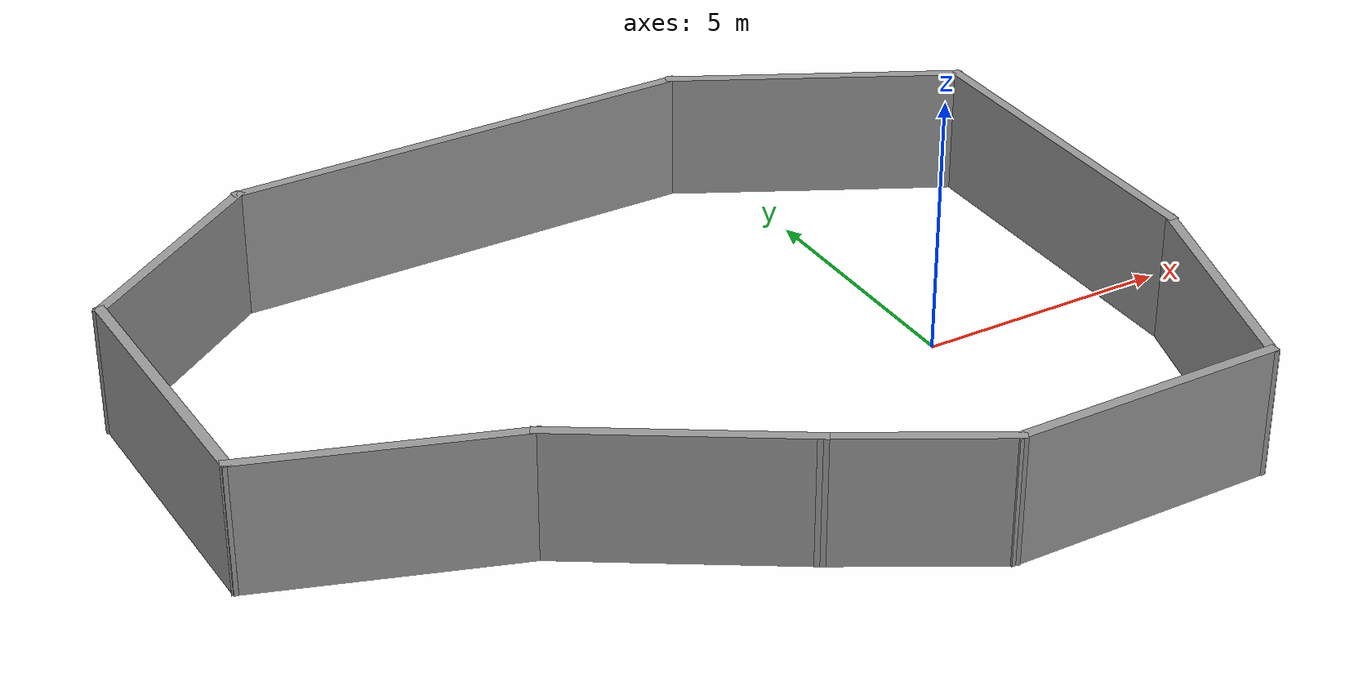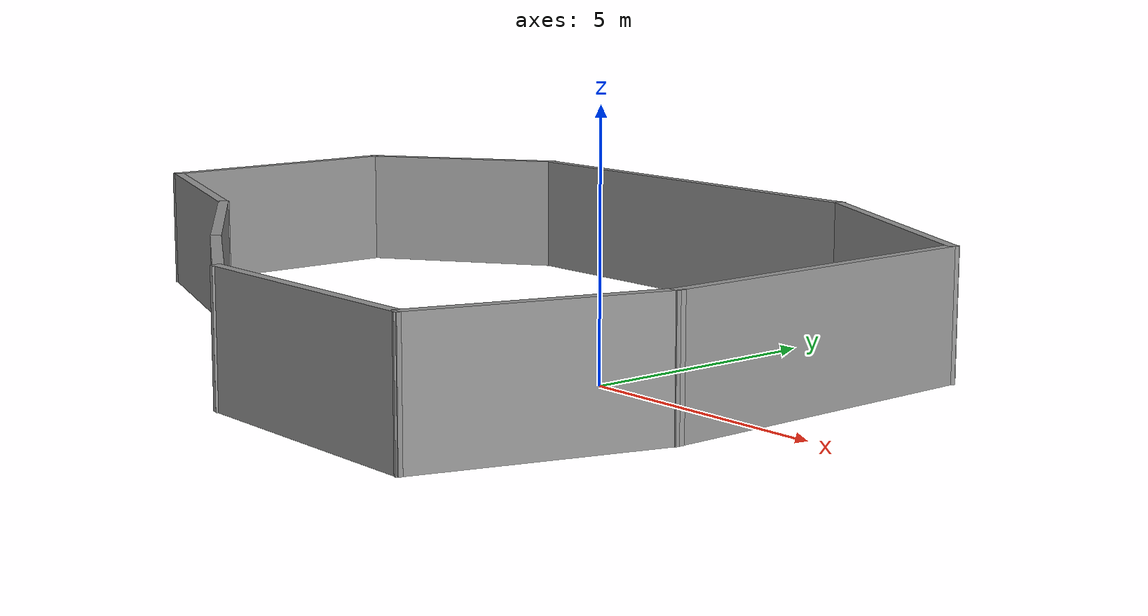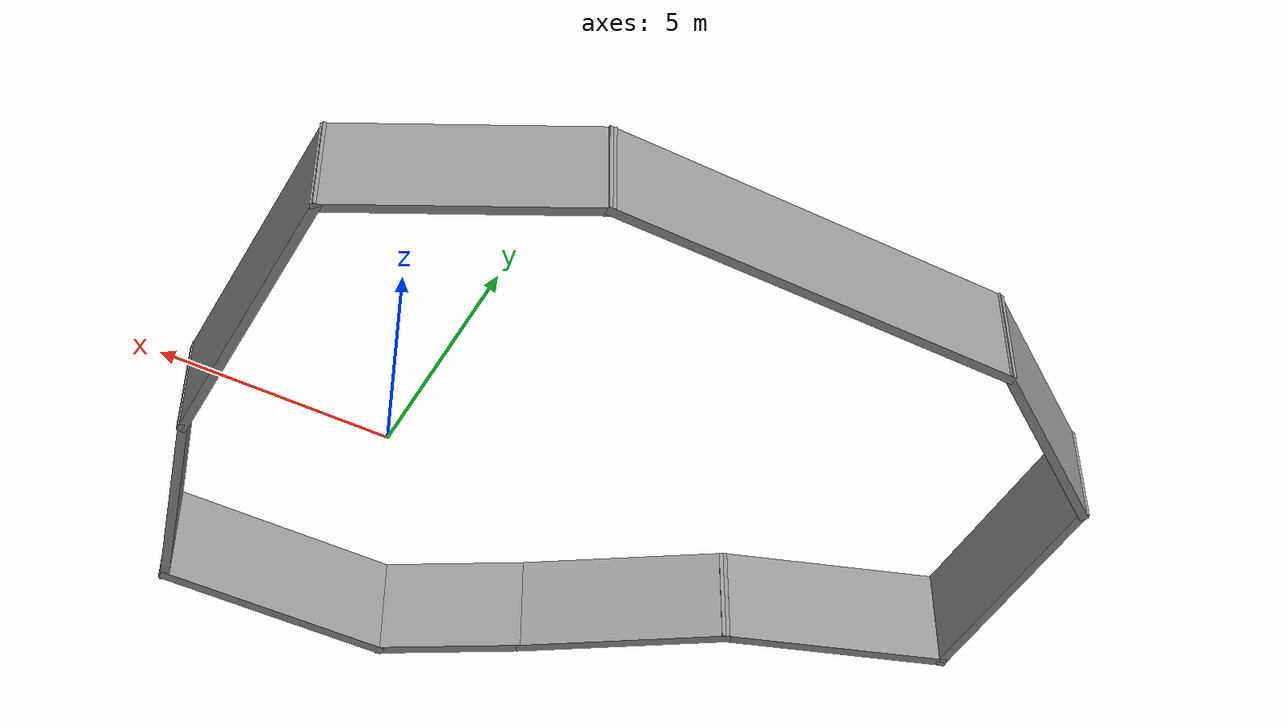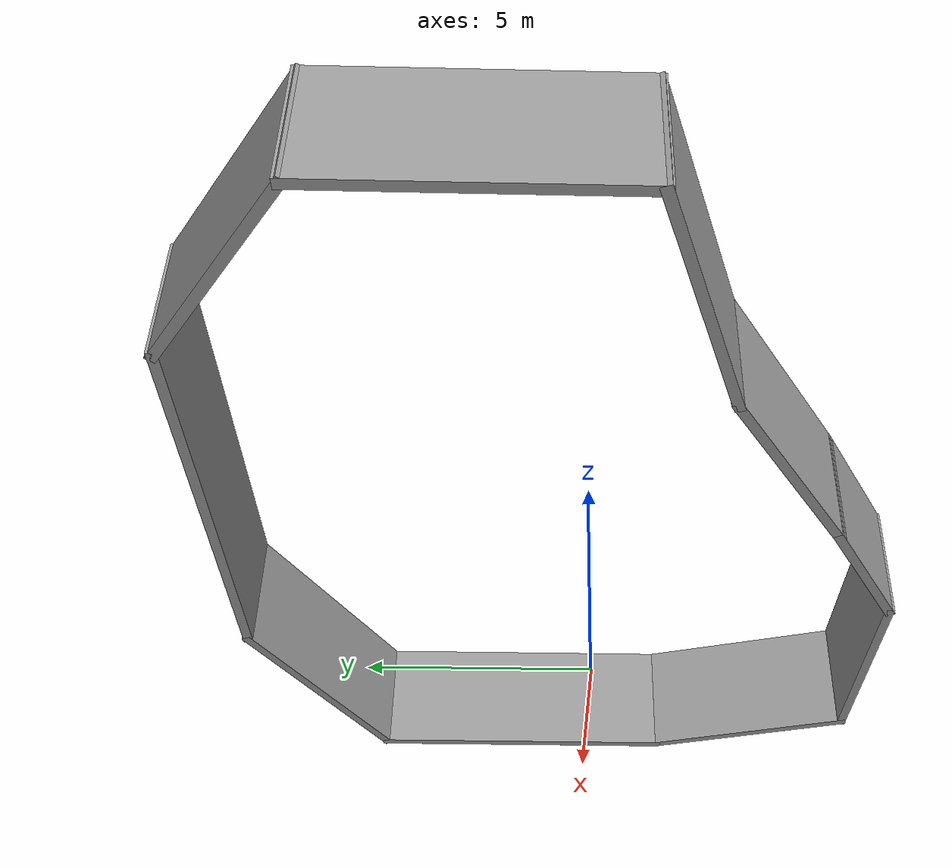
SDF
<?xml version='1.0'?>
<sdf version='1.4'>
  <model name='testWork.sdf'>
    <link name='Wall_10'>
      <collision name='Wall_10_Collision'>
        <geometry>
          <box>
            <size>4.77664 0.2 2.5</size>
          </box>
        </geometry>
        <pose>0 0 1.25 0 -0 0</pose>
      </collision>
      <visual name='Wall_10_Visual'>
        <pose>0 0 1.25 0 -0 0</pose>
        <geometry>
          <box>
            <size>4.77664 0.2 2.5</size>
          </box>
        </geometry>
        <material>
          <script>
            <uri>file://media/materials/scripts/gazebo.material</uri>
            <name>Gazebo/Grey</name>
          </script>
        </material>
      </visual>
      <velocity_decay>
        <linear>0</linear>
        <angular>0</angular>
      </velocity_decay>
      <pose>3.1445 -3.95691 0 0 0 -1.87004</pose>
    </link>
    <link name='Wall_11'>
      <collision name='Wall_11_Collision'>
        <geometry>
          <box>
            <size>5.31763 0.2 2.5</size>
          </box>
        </geometry>
        <pose>0 0 1.25 0 -0 0</pose>
      </collision>
      <visual name='Wall_11_Visual'>
        <pose>0 0 1.25 0 -0 0</pose>
        <geometry>
          <box>
            <size>5.31763 0.2 2.5</size>
          </box>
        </geometry>
        <material>
          <script>
            <uri>file://media/materials/scripts/gazebo.material</uri>
            <name>Gazebo/Grey</name>
          </script>
        </material>
      </visual>
      <velocity_decay>
        <linear>0</linear>
        <angular>0</angular>
      </velocity_decay>
      <pose>-0.088913 -6.14354 0 0 -0 3.14159</pose>
    </link>
    <link name='Wall_12'>
      <collision name='Wall_12_Collision'>
        <geometry>
          <box>
            <size>3.36807 0.2 2.5</size>
          </box>
        </geometry>
        <pose>0 0 1.25 0 -0 0</pose>
      </collision>
      <visual name='Wall_12_Visual'>
        <pose>0 0 1.25 0 -0 0</pose>
        <geometry>
          <box>
            <size>3.36807 0.2 2.5</size>
          </box>
        </geometry>
        <material>
          <script>
            <uri>file://media/materials/scripts/gazebo.material</uri>
            <name>Gazebo/Grey</name>
          </script>
        </material>
      </visual>
      <velocity_decay>
        <linear>0</linear>
        <angular>0</angular>
      </velocity_decay>
      <pose>-4.02018 -5.35263 0 0 -0 2.6188</pose>
    </link>
    <link name='Wall_13'>
      <collision name='Wall_13_Collision'>
        <geometry>
          <box>
            <size>4.7816 0.2 2.5</size>
          </box>
        </geometry>
        <pose>0 0 1.25 0 -0 0</pose>
      </collision>
      <visual name='Wall_13_Visual'>
        <pose>0 0 1.25 0 -0 0</pose>
        <geometry>
          <box>
            <size>4.7816 0.2 2.5</size>
          </box>
        </geometry>
        <material>
          <script>
            <uri>file://media/materials/scripts/gazebo.material</uri>
            <name>Gazebo/Grey</name>
          </script>
        </material>
      </visual>
      <velocity_decay>
        <linear>0</linear>
        <angular>0</angular>
      </velocity_decay>
      <pose>-7.32338 -3.32884 0 0 -0 2.57331</pose>
    </link>
    <link name='Wall_14'>
      <collision name='Wall_14_Collision'>
        <geometry>
          <box>
            <size>5.12912 0.2 2.5</size>
          </box>
        </geometry>
        <pose>0 0 1.25 0 -0 0</pose>
      </collision>
      <visual name='Wall_14_Visual'>
        <pose>0 0 1.25 0 -0 0</pose>
        <geometry>
          <box>
            <size>5.12912 0.2 2.5</size>
          </box>
        </geometry>
        <material>
          <script>
            <uri>file://media/materials/scripts/gazebo.material</uri>
            <name>Gazebo/Grey</name>
          </script>
        </material>
      </visual>
      <velocity_decay>
        <linear>0</linear>
        <angular>0</angular>
      </velocity_decay>
      <pose>-11.5803 -1.28179 0 0 -0 2.80492</pose>
    </link>
    <link name='Wall_15'>
      <collision name='Wall_15_Collision'>
        <geometry>
          <box>
            <size>5.59677 0.2 2.5</size>
          </box>
        </geometry>
        <pose>0 0 1.25 0 -0 0</pose>
      </collision>
      <visual name='Wall_15_Visual'>
        <pose>0 0 1.25 0 -0 0</pose>
        <geometry>
          <box>
            <size>5.59677 0.2 2.5</size>
          </box>
        </geometry>
        <material>
          <script>
            <uri>file://media/materials/scripts/gazebo.material</uri>
            <name>Gazebo/Grey</name>
          </script>
        </material>
      </visual>
      <velocity_decay>
        <linear>0</linear>
        <angular>0</angular>
      </velocity_decay>
      <pose>-13.9065 2.23077 0 0 -0 1.5708</pose>
    </link>
    <link name='Wall_16'>
      <collision name='Wall_16_Collision'>
        <geometry>
          <box>
            <size>4.64029 0.2 2.5</size>
          </box>
        </geometry>
        <pose>0 0 1.25 0 -0 0</pose>
      </collision>
      <visual name='Wall_16_Visual'>
        <pose>0 0 1.25 0 -0 0</pose>
        <geometry>
          <box>
            <size>4.64029 0.2 2.5</size>
          </box>
        </geometry>
        <material>
          <script>
            <uri>file://media/materials/scripts/gazebo.material</uri>
            <name>Gazebo/Grey</name>
          </script>
        </material>
      </visual>
      <velocity_decay>
        <linear>0</linear>
        <angular>0</angular>
      </velocity_decay>
      <pose>-12.0921 6.20856 0 0 -0 0.614159</pose>
    </link>
    <link name='Wall_7'>
      <collision name='Wall_7_Collision'>
        <geometry>
          <box>
            <size>9.31869 0.2 2.5</size>
          </box>
        </geometry>
        <pose>0 0 1.25 0 -0 0</pose>
      </collision>
      <visual name='Wall_7_Visual'>
        <pose>0 0 1.25 0 -0 0</pose>
        <geometry>
          <box>
            <size>9.31869 0.2 2.5</size>
          </box>
        </geometry>
        <material>
          <script>
            <uri>file://media/materials/scripts/gazebo.material</uri>
            <name>Gazebo/Grey</name>
          </script>
        </material>
      </visual>
      <velocity_decay>
        <linear>0</linear>
        <angular>0</angular>
      </velocity_decay>
      <pose>-5.71831 7.48797 0 0 -0 0</pose>
    </link>
    <link name='Wall_8'>
      <collision name='Wall_8_Collision'>
        <geometry>
          <box>
            <size>5.81862 0.2 2.5</size>
          </box>
        </geometry>
        <pose>0 0 1.25 0 -0 0</pose>
      </collision>
      <visual name='Wall_8_Visual'>
        <pose>0 0 1.25 0 -0 0</pose>
        <geometry>
          <box>
            <size>5.81862 0.2 2.5</size>
          </box>
        </geometry>
        <material>
          <script>
            <uri>file://media/materials/scripts/gazebo.material</uri>
            <name>Gazebo/Grey</name>
          </script>
        </material>
      </visual>
      <velocity_decay>
        <linear>0</linear>
        <angular>0</angular>
      </velocity_decay>
      <pose>1.33007 6.1853 0 0 0 -0.482164</pose>
    </link>
    <link name='Wall_9'>
      <collision name='Wall_9_Collision'>
        <geometry>
          <box>
            <size>6.85292 0.2 2.5</size>
          </box>
        </geometry>
        <pose>0 0 1.25 0 -0 0</pose>
      </collision>
      <visual name='Wall_9_Visual'>
        <pose>0 0 1.25 0 -0 0</pose>
        <geometry>
          <box>
            <size>6.85292 0.2 2.5</size>
          </box>
        </geometry>
        <material>
          <script>
            <uri>file://media/materials/scripts/gazebo.material</uri>
            <name>Gazebo/Grey</name>
          </script>
        </material>
      </visual>
      <velocity_decay>
        <linear>0</linear>
        <angular>0</angular>
      </velocity_decay>
      <pose>3.8191 1.55617 0 0 0 -1.5708</pose>
    </link>
    <static>1</static>
  </model>
</sdf>
